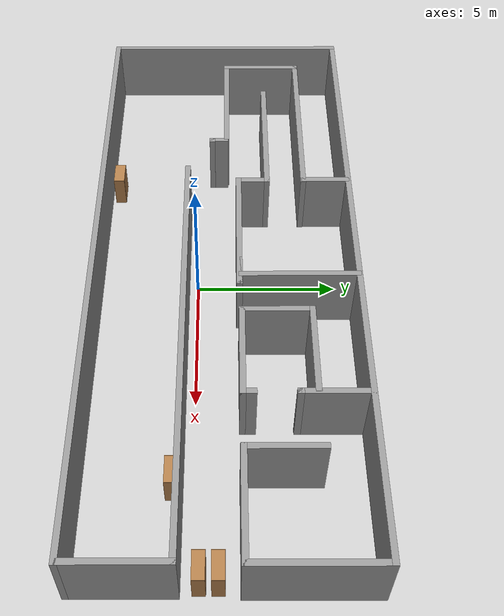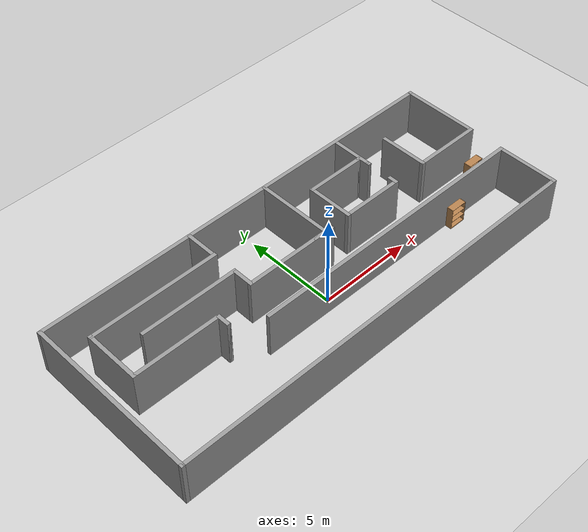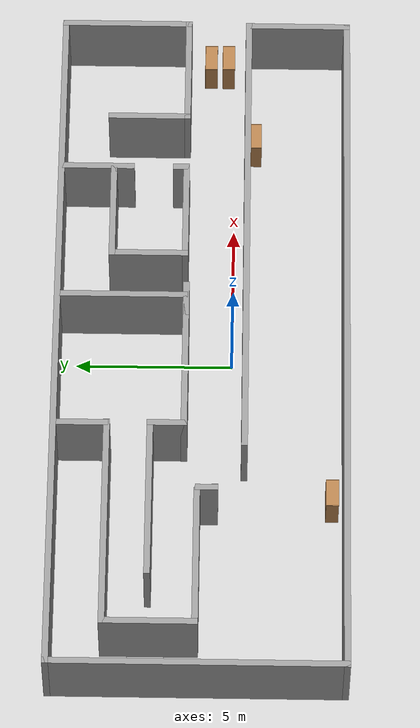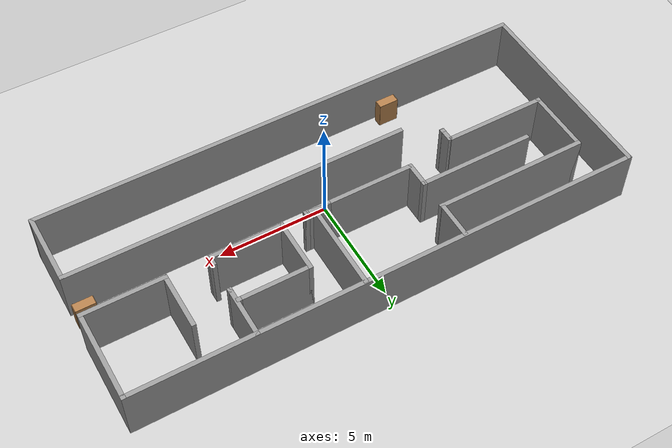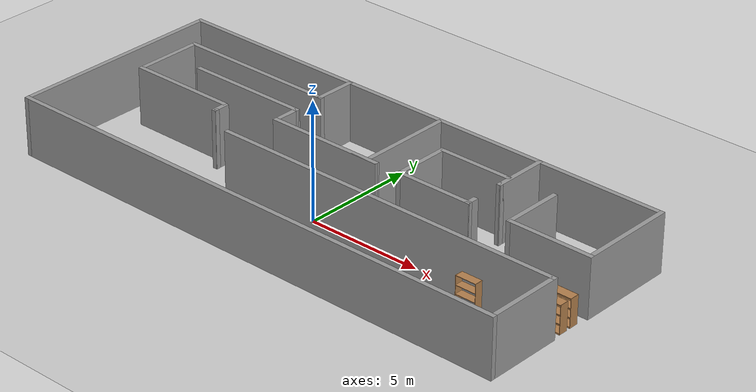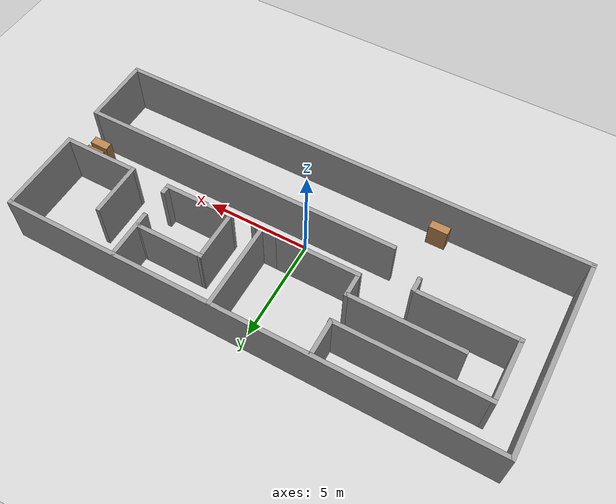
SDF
<sdf version="1.4">
 <world name="default">
  <physics type="ode">
   <gravity>0.000000 0.000000 -9.810000</gravity>
   <ode>
    <solver><type>quick</type><iters>20</iters><sor>1.000000</sor></solver>
    <constraints>
     <cfm>0.000000</cfm>
     <erp>0.200000</erp>
     <contact_max_correcting_vel>100.000000</contact_max_correcting_vel>
     <contact_surface_layer>0.000000</contact_surface_layer>
    </constraints>
   </ode>
   <real_time_update_rate>1000.000000</real_time_update_rate>
   <max_step_size>0.001000</max_step_size>
   <real_time_factor>1.000000</real_time_factor>
   <max_contacts>20</max_contacts>
  </physics>
  <light name="sun" type="directional">
   <pose>0.000000 0.000000 10.000000 0.000000 0.000000 0.000000</pose>
   <diffuse>0.800000 0.800000 0.800000 1.000000</diffuse>
   <specular>0.200000 0.200000 0.200000 1.000000</specular>
   <attenuation>
    <range>1000.000000</range>
    <constant>0.900000</constant>
    <linear>0.010000</linear>
    <quadratic>0.001000</quadratic>
   </attenuation>
   <direction>0.500000 0.100000 -0.900000</direction>
  </light>
  <model name="ground_plane">
   <static>1</static>
   <link name="link">
    <collision name="collision">
     <geometry>
      <plane><normal>0.000000 0.000000 1.000000</normal><size>100.000000 100.000000</size></plane>
     </geometry>
     <surface><friction><ode><mu>100.000000</mu><mu2>50.000000</mu2></ode></friction></surface>
    </collision>
    <visual name="visual">
     <cast_shadows>0</cast_shadows>
     <geometry>
      <plane><normal>0.000000 0.000000 1.000000</normal><size>100.000000 100.000000</size></plane>
     </geometry>
     <material>
      <script><uri>file://media/materials/scripts/gazebo.material</uri><name>Gazebo/Grey</name></script>
     </material>
    </visual>
    <velocity_decay><linear>0.000000</linear><angular>0.000000</angular></velocity_decay>
   </link>
  </model>
  <scene>
   <ambient>0.200000 0.200000 0.200000 1.000000</ambient>
   <background>0.700000 0.700000 0.700000 1.000000</background>
   <shadows>1</shadows>
  </scene>
  <model name="LaberyintWalls">
   <link name="Wall_0">
    <collision name="Wall_0_Collision">
     <geometry><box><size>15.568300 0.200000 2.500000</size></box></geometry>
     <pose>0.000000 0.000000 1.250000 0.000000 0.000000 0.000000</pose>
    </collision>
    <visual name="Wall_0_Visual">
     <pose>0.000000 0.000000 1.250000 0.000000 0.000000 0.000000</pose>
     <geometry><box><size>15.568300 0.200000 2.500000</size></box></geometry>
     <material>
      <script><uri>file://media/materials/scripts/gazebo.material</uri><name>Gazebo/Grey</name></script>
     </material>
    </visual>
    <velocity_decay><linear>0.000000</linear><angular>0.000000</angular></velocity_decay>
    <pose>3.750840 -0.417019 0.000000 0.000000 0.000000 0.000000</pose>
   </link>
   <link name="Wall_1">
    <collision name="Wall_1_Collision">
     <geometry><box><size>3.405800 0.200000 2.500000</size></box></geometry>
     <pose>0.000000 0.000000 1.250000 0.000000 0.000000 0.000000</pose>
    </collision>
    <visual name="Wall_1_Visual">
     <pose>0.000000 0.000000 1.250000 0.000000 0.000000 0.000000</pose>
     <geometry><box><size>3.405800 0.200000 2.500000</size></box></geometry>
     <material>
      <script><uri>file://media/materials/scripts/gazebo.material</uri><name>Gazebo/Grey</name></script>
     </material>
    </visual>
    <velocity_decay><linear>0.000000</linear><angular>0.000000</angular></velocity_decay>
    <pose>11.435000 -2.019920 0.000000 0.000000 0.000000 -1.570800</pose>
   </link>
   <link name="Wall_10">
    <collision name="Wall_10_Collision">
     <geometry><box><size>0.220000 0.200000 2.500000</size></box></geometry>
     <pose>0.000000 0.000000 1.250000 0.000000 0.000000 0.000000</pose>
    </collision>
    <visual name="Wall_10_Visual">
     <pose>0.000000 0.000000 1.250000 0.000000 0.000000 0.000000</pose>
     <geometry><box><size>0.220000 0.200000 2.500000</size></box></geometry>
     <material>
      <script><uri>file://media/materials/scripts/gazebo.material</uri><name>Gazebo/Grey</name></script>
     </material>
    </visual>
    <velocity_decay><linear>0.000000</linear><angular>0.000000</angular></velocity_decay>
    <pose>6.037550 3.340050 0.000000 0.000000 0.000000 1.570800</pose>
   </link>
   <link name="Wall_12">
    <collision name="Wall_12_Collision">
     <geometry><box><size>0.540000 0.200000 2.500000</size></box></geometry>
     <pose>0.000000 0.000000 1.250000 0.000000 0.000000 0.000000</pose>
    </collision>
    <visual name="Wall_12_Visual">
     <pose>0.000000 0.000000 1.250000 0.000000 0.000000 0.000000</pose>
     <geometry><box><size>0.540000 0.200000 2.500000</size></box></geometry>
     <material>
      <script><uri>file://media/materials/scripts/gazebo.material</uri><name>Gazebo/Grey</name></script>
     </material>
    </visual>
    <velocity_decay><linear>0.000000</linear><angular>0.000000</angular></velocity_decay>
    <pose>6.037550 1.720050 0.000000 0.000000 0.000000 -1.570800</pose>
   </link>
   <link name="Wall_13">
    <collision name="Wall_13_Collision">
     <geometry><box><size>3.400000 0.200000 2.500000</size></box></geometry>
     <pose>0.000000 0.000000 1.250000 0.000000 0.000000 0.000000</pose>
    </collision>
    <visual name="Wall_13_Visual">
     <pose>0.000000 0.000000 1.250000 0.000000 0.000000 0.000000</pose>
     <geometry><box><size>3.400000 0.200000 2.500000</size></box></geometry>
     <material>
      <script><uri>file://media/materials/scripts/gazebo.material</uri><name>Gazebo/Grey</name></script>
     </material>
    </visual>
    <velocity_decay><linear>0.000000</linear><angular>0.000000</angular></velocity_decay>
    <pose>4.437550 1.550050 0.000000 0.000000 0.000000 3.141590</pose>
   </link>
   <link name="Wall_14">
    <collision name="Wall_14_Collision">
     <geometry><box><size>2.540000 0.200000 2.500000</size></box></geometry>
     <pose>0.000000 0.000000 1.250000 0.000000 0.000000 0.000000</pose>
    </collision>
    <visual name="Wall_14_Visual">
     <pose>0.000000 0.000000 1.250000 0.000000 0.000000 0.000000</pose>
     <geometry><box><size>2.540000 0.200000 2.500000</size></box></geometry>
     <material>
      <script><uri>file://media/materials/scripts/gazebo.material</uri><name>Gazebo/Grey</name></script>
     </material>
    </visual>
    <velocity_decay><linear>0.000000</linear><angular>0.000000</angular></velocity_decay>
    <pose>2.837550 2.720050 0.000000 0.000000 0.000000 1.570800</pose>
   </link>
   <link name="Wall_15">
    <collision name="Wall_15_Collision">
     <geometry><box><size>3.300000 0.200000 2.500000</size></box></geometry>
     <pose>0.000000 0.000000 1.250000 0.000000 0.000000 0.000000</pose>
    </collision>
    <visual name="Wall_15_Visual">
     <pose>0.000000 0.000000 1.250000 0.000000 0.000000 0.000000</pose>
     <geometry><box><size>3.300000 0.200000 2.500000</size></box></geometry>
     <material>
      <script><uri>file://media/materials/scripts/gazebo.material</uri><name>Gazebo/Grey</name></script>
     </material>
    </visual>
    <velocity_decay><linear>0.000000</linear><angular>0.000000</angular></velocity_decay>
    <pose>4.387550 3.890050 0.000000 0.000000 0.000000 0.000000</pose>
   </link>
   <link name="Wall_16">
    <collision name="Wall_16_Collision">
     <geometry><box><size>0.220000 0.200000 2.500000</size></box></geometry>
     <pose>0.000000 0.000000 1.250000 0.000000 0.000000 0.000000</pose>
    </collision>
    <visual name="Wall_16_Visual">
     <pose>0.000000 0.000000 1.250000 0.000000 0.000000 0.000000</pose>
     <geometry><box><size>0.220000 0.200000 2.500000</size></box></geometry>
     <material>
      <script><uri>file://media/materials/scripts/gazebo.material</uri><name>Gazebo/Grey</name></script>
     </material>
    </visual>
    <velocity_decay><linear>0.000000</linear><angular>0.000000</angular></velocity_decay>
    <pose>5.947550 3.890050 0.000000 0.000000 0.000000 0.000000</pose>
   </link>
   <link name="Wall_18">
    <collision name="Wall_18_Collision">
     <geometry><box><size>4.200000 0.200000 2.500000</size></box></geometry>
     <pose>0.000000 0.000000 1.250000 0.000000 0.000000 0.000000</pose>
    </collision>
    <visual name="Wall_18_Visual">
     <pose>0.000000 0.000000 1.250000 0.000000 0.000000 0.000000</pose>
     <geometry><box><size>4.200000 0.200000 2.500000</size></box></geometry>
     <material>
      <script><uri>file://media/materials/scripts/gazebo.material</uri><name>Gazebo/Grey</name></script>
     </material>
    </visual>
    <velocity_decay><linear>0.000000</linear><angular>0.000000</angular></velocity_decay>
    <pose>1.317550 3.550050 0.000000 0.000000 0.000000 -1.570800</pose>
   </link>
   <link name="Wall_2">
    <collision name="Wall_2_Collision">
     <geometry><box><size>23.080000 0.200000 2.500000</size></box></geometry>
     <pose>0.000000 0.000000 1.250000 0.000000 0.000000 0.000000</pose>
    </collision>
    <visual name="Wall_2_Visual">
     <pose>0.000000 0.000000 1.250000 0.000000 0.000000 0.000000</pose>
     <geometry><box><size>23.080000 0.200000 2.500000</size></box></geometry>
     <material>
      <script><uri>file://media/materials/scripts/gazebo.material</uri><name>Gazebo/Grey</name></script>
     </material>
    </visual>
    <velocity_decay><linear>0.000000</linear><angular>0.000000</angular></velocity_decay>
    <pose>-0.005001 -3.622820 0.000000 0.000000 0.000000 3.141590</pose>
   </link>
   <link name="Wall_20">
    <collision name="Wall_20_Collision">
     <geometry><box><size>1.200000 0.200000 2.500000</size></box></geometry>
     <pose>0.000000 0.000000 1.250000 0.000000 0.000000 0.000000</pose>
    </collision>
    <visual name="Wall_20_Visual">
     <pose>0.000000 0.000000 1.250000 0.000000 0.000000 0.000000</pose>
     <geometry><box><size>1.200000 0.200000 2.500000</size></box></geometry>
     <material>
      <script><uri>file://media/materials/scripts/gazebo.material</uri><name>Gazebo/Grey</name></script>
     </material>
    </visual>
    <velocity_decay><linear>0.000000</linear><angular>0.000000</angular></velocity_decay>
    <pose>1.177550 1.490050 0.000000 0.000000 0.000000 0.000000</pose>
   </link>
   <link name="Wall_21">
    <collision name="Wall_21_Collision">
     <geometry><box><size>0.210000 0.200000 2.500000</size></box></geometry>
     <pose>0.000000 0.000000 1.250000 0.000000 0.000000 0.000000</pose>
    </collision>
    <visual name="Wall_21_Visual">
     <pose>0.000000 0.000000 1.250000 0.000000 0.000000 0.000000</pose>
     <geometry><box><size>0.210000 0.200000 2.500000</size></box></geometry>
     <material>
      <script><uri>file://media/materials/scripts/gazebo.material</uri><name>Gazebo/Grey</name></script>
     </material>
    </visual>
    <velocity_decay><linear>0.000000</linear><angular>0.000000</angular></velocity_decay>
    <pose>1.682550 1.490050 0.000000 0.000000 0.000000 0.000000</pose>
   </link>
   <link name="Wall_22">
    <collision name="Wall_22_Collision">
     <geometry><box><size>5.150000 0.200000 2.500000</size></box></geometry>
     <pose>0.000000 0.000000 1.250000 0.000000 0.000000 0.000000</pose>
    </collision>
    <visual name="Wall_22_Visual">
     <pose>0.000000 0.000000 1.250000 0.000000 0.000000 0.000000</pose>
     <geometry><box><size>5.150000 0.200000 2.500000</size></box></geometry>
     <material>
      <script><uri>file://media/materials/scripts/gazebo.material</uri><name>Gazebo/Grey</name></script>
     </material>
    </visual>
    <velocity_decay><linear>0.000000</linear><angular>0.000000</angular></velocity_decay>
    <pose>-0.787451 1.490050 0.000000 0.000000 0.000000 3.141590</pose>
   </link>
   <link name="Wall_23">
    <collision name="Wall_23_Collision">
     <geometry><box><size>1.260000 0.200000 2.500000</size></box></geometry>
     <pose>0.000000 0.000000 1.250000 0.000000 0.000000 0.000000</pose>
    </collision>
    <visual name="Wall_23_Visual">
     <pose>0.000000 0.000000 1.250000 0.000000 0.000000 0.000000</pose>
     <geometry><box><size>1.260000 0.200000 2.500000</size></box></geometry>
     <material>
      <script><uri>file://media/materials/scripts/gazebo.material</uri><name>Gazebo/Grey</name></script>
     </material>
    </visual>
    <velocity_decay><linear>0.000000</linear><angular>0.000000</angular></velocity_decay>
    <pose>-3.262450 2.020060 0.000000 0.000000 0.000000 1.570800</pose>
   </link>
   <link name="Wall_25">
    <collision name="Wall_25_Collision">
     <geometry><box><size>1.780000 0.200000 2.500000</size></box></geometry>
     <pose>0.000000 0.000000 1.250000 0.000000 0.000000 0.000000</pose>
    </collision>
    <visual name="Wall_25_Visual">
     <pose>0.000000 0.000000 1.250000 0.000000 0.000000 0.000000</pose>
     <geometry><box><size>1.780000 0.200000 2.500000</size></box></geometry>
     <material>
      <script><uri>file://media/materials/scripts/gazebo.material</uri><name>Gazebo/Grey</name></script>
     </material>
    </visual>
    <velocity_decay><linear>0.000000</linear><angular>0.000000</angular></velocity_decay>
    <pose>-3.282450 4.740050 0.000000 0.000000 0.000000 1.570800</pose>
   </link>
   <link name="Wall_3">
    <collision name="Wall_3_Collision">
     <geometry><box><size>9.412870 0.200000 2.500000</size></box></geometry>
     <pose>0.000000 0.000000 1.250000 0.000000 0.000000 0.000000</pose>
    </collision>
    <visual name="Wall_3_Visual">
     <pose>0.000000 0.000000 1.250000 0.000000 0.000000 0.000000</pose>
     <geometry><box><size>9.412870 0.200000 2.500000</size></box></geometry>
     <material>
      <script><uri>file://media/materials/scripts/gazebo.material</uri><name>Gazebo/Grey</name></script>
     </material>
    </visual>
    <velocity_decay><linear>0.000000</linear><angular>0.000000</angular></velocity_decay>
    <pose>-11.445000 0.983617 0.000000 0.000000 0.000000 1.570800</pose>
   </link>
   <link name="Wall_30">
    <collision name="Wall_30_Collision">
     <geometry><box><size>5.320000 0.200000 2.500000</size></box></geometry>
     <pose>0.000000 0.000000 1.250000 0.000000 0.000000 0.000000</pose>
    </collision>
    <visual name="Wall_30_Visual">
     <pose>0.000000 0.000000 1.250000 0.000000 0.000000 0.000000</pose>
     <geometry><box><size>5.320000 0.200000 2.500000</size></box></geometry>
     <material>
      <script><uri>file://media/materials/scripts/gazebo.material</uri><name>Gazebo/Grey</name></script>
     </material>
    </visual>
    <velocity_decay><linear>0.000000</linear><angular>0.000000</angular></velocity_decay>
    <pose>-5.822450 2.550050 0.000000 0.000000 0.000000 3.141590</pose>
   </link>
   <link name="Wall_35">
    <collision name="Wall_35_Collision">
     <geometry><box><size>7.020000 0.200000 2.500000</size></box></geometry>
     <pose>0.000000 0.000000 1.250000 0.000000 0.000000 0.000000</pose>
    </collision>
    <visual name="Wall_35_Visual">
     <pose>0.000000 0.000000 1.250000 0.000000 0.000000 0.000000</pose>
     <geometry><box><size>7.020000 0.200000 2.500000</size></box></geometry>
     <material>
      <script><uri>file://media/materials/scripts/gazebo.material</uri><name>Gazebo/Grey</name></script>
     </material>
    </visual>
    <velocity_decay><linear>0.000000</linear><angular>0.000000</angular></velocity_decay>
    <pose>-6.672450 3.910050 0.000000 0.000000 0.000000 3.141590</pose>
   </link>
   <link name="Wall_36">
    <collision name="Wall_36_Collision">
     <geometry><box><size>3.060000 0.200000 2.500000</size></box></geometry>
     <pose>0.000000 0.000000 1.250000 0.000000 0.000000 0.000000</pose>
    </collision>
    <visual name="Wall_36_Visual">
     <pose>0.000000 0.000000 1.250000 0.000000 0.000000 0.000000</pose>
     <geometry><box><size>3.060000 0.200000 2.500000</size></box></geometry>
     <material>
      <script><uri>file://media/materials/scripts/gazebo.material</uri><name>Gazebo/Grey</name></script>
     </material>
    </visual>
    <velocity_decay><linear>0.000000</linear><angular>0.000000</angular></velocity_decay>
    <pose>-10.082500 2.480060 0.000000 0.000000 0.000000 -1.570800</pose>
   </link>
   <link name="Wall_37">
    <collision name="Wall_37_Collision">
     <geometry><box><size>4.661610 0.200000 2.500000</size></box></geometry>
     <pose>0.000000 0.000000 1.250000 0.000000 0.000000 0.000000</pose>
    </collision>
    <visual name="Wall_37_Visual">
     <pose>0.000000 0.000000 1.250000 0.000000 0.000000 0.000000</pose>
     <geometry><box><size>4.661610 0.200000 2.500000</size></box></geometry>
     <material>
      <script><uri>file://media/materials/scripts/gazebo.material</uri><name>Gazebo/Grey</name></script>
     </material>
    </visual>
    <velocity_decay><linear>0.000000</linear><angular>0.000000</angular></velocity_decay>
    <pose>-7.851640 1.050050 0.000000 0.000000 0.000000 0.000000</pose>
   </link>
   <link name="Wall_39">
    <collision name="Wall_39_Collision">
     <geometry><box><size>0.720000 0.200000 2.500000</size></box></geometry>
     <pose>0.000000 0.000000 1.250000 0.000000 0.000000 0.000000</pose>
    </collision>
    <visual name="Wall_39_Visual">
     <pose>0.000000 0.000000 1.250000 0.000000 0.000000 0.000000</pose>
     <geometry><box><size>0.720000 0.200000 2.500000</size></box></geometry>
     <material>
      <script><uri>file://media/materials/scripts/gazebo.material</uri><name>Gazebo/Grey</name></script>
     </material>
    </visual>
    <velocity_decay><linear>0.000000</linear><angular>0.000000</angular></velocity_decay>
    <pose>-5.502450 0.750055 0.000000 0.000000 0.000000 -1.570800</pose>
   </link>
   <link name="Wall_4">
    <collision name="Wall_4_Collision">
     <geometry><box><size>23.122600 0.200000 2.500000</size></box></geometry>
     <pose>0.000000 0.000000 1.250000 0.000000 0.000000 0.000000</pose>
    </collision>
    <visual name="Wall_4_Visual">
     <pose>0.000000 0.000000 1.250000 0.000000 0.000000 0.000000</pose>
     <geometry><box><size>23.122600 0.200000 2.500000</size></box></geometry>
     <material>
      <script><uri>file://media/materials/scripts/gazebo.material</uri><name>Gazebo/Grey</name></script>
     </material>
    </visual>
    <velocity_decay><linear>0.000000</linear><angular>0.000000</angular></velocity_decay>
    <pose>0.016274 5.590060 0.000000 0.000000 0.000000 0.000000</pose>
   </link>
   <link name="Wall_40">
    <collision name="Wall_40_Collision">
     <geometry><box><size>0.210000 0.200000 2.500000</size></box></geometry>
     <pose>0.000000 0.000000 1.250000 0.000000 0.000000 0.000000</pose>
    </collision>
    <visual name="Wall_40_Visual">
     <pose>0.000000 0.000000 1.250000 0.000000 0.000000 0.000000</pose>
     <geometry><box><size>0.210000 0.200000 2.500000</size></box></geometry>
     <material>
      <script><uri>file://media/materials/scripts/gazebo.material</uri><name>Gazebo/Grey</name></script>
     </material>
    </visual>
    <velocity_decay><linear>0.000000</linear><angular>0.000000</angular></velocity_decay>
    <pose>-5.497450 0.490055 0.000000 0.000000 0.000000 0.000000</pose>
   </link>
   <link name="Wall_5">
    <collision name="Wall_5_Collision">
     <geometry><box><size>4.240000 0.200000 2.500000</size></box></geometry>
     <pose>0.000000 0.000000 1.250000 0.000000 0.000000 0.000000</pose>
    </collision>
    <visual name="Wall_5_Visual">
     <pose>0.000000 0.000000 1.250000 0.000000 0.000000 0.000000</pose>
     <geometry><box><size>4.240000 0.200000 2.500000</size></box></geometry>
     <material>
      <script><uri>file://media/materials/scripts/gazebo.material</uri><name>Gazebo/Grey</name></script>
     </material>
    </visual>
    <velocity_decay><linear>0.000000</linear><angular>0.000000</angular></velocity_decay>
    <pose>11.477600 3.570050 0.000000 0.000000 0.000000 -1.570800</pose>
   </link>
   <link name="Wall_6">
    <collision name="Wall_6_Collision">
     <geometry><box><size>3.740000 0.200000 2.500000</size></box></geometry>
     <pose>0.000000 0.000000 1.250000 0.000000 0.000000 0.000000</pose>
    </collision>
    <visual name="Wall_6_Visual">
     <pose>0.000000 0.000000 1.250000 0.000000 0.000000 0.000000</pose>
     <geometry><box><size>3.740000 0.200000 2.500000</size></box></geometry>
     <material>
      <script><uri>file://media/materials/scripts/gazebo.material</uri><name>Gazebo/Grey</name></script>
     </material>
    </visual>
    <velocity_decay><linear>0.000000</linear><angular>0.000000</angular></velocity_decay>
    <pose>9.707550 1.550050 0.000000 0.000000 0.000000 3.141590</pose>
   </link>
   <link name="Wall_7">
    <collision name="Wall_7_Collision">
     <geometry><box><size>2.660000 0.200000 2.500000</size></box></geometry>
     <pose>0.000000 0.000000 1.250000 0.000000 0.000000 0.000000</pose>
    </collision>
    <visual name="Wall_7_Visual">
     <pose>0.000000 0.000000 1.250000 0.000000 0.000000 0.000000</pose>
     <geometry><box><size>2.660000 0.200000 2.500000</size></box></geometry>
     <material>
      <script><uri>file://media/materials/scripts/gazebo.material</uri><name>Gazebo/Grey</name></script>
     </material>
    </visual>
    <velocity_decay><linear>0.000000</linear><angular>0.000000</angular></velocity_decay>
    <pose>7.937550 2.780050 0.000000 0.000000 0.000000 1.570800</pose>
   </link>
   <link name="Wall_9">
    <collision name="Wall_9_Collision">
     <geometry><box><size>2.440000 0.200000 2.500000</size></box></geometry>
     <pose>0.000000 0.000000 1.250000 0.000000 0.000000 0.000000</pose>
    </collision>
    <visual name="Wall_9_Visual">
     <pose>0.000000 0.000000 1.250000 0.000000 0.000000 0.000000</pose>
     <geometry><box><size>2.440000 0.200000 2.500000</size></box></geometry>
     <material>
      <script><uri>file://media/materials/scripts/gazebo.material</uri><name>Gazebo/Grey</name></script>
     </material>
    </visual>
    <velocity_decay><linear>0.000000</linear><angular>0.000000</angular></velocity_decay>
    <pose>6.037550 4.450050 0.000000 0.000000 0.000000 -1.570800</pose>
   </link>
   <static>1</static>
  </model>
  <model name="bookshelf">
   <static>1</static>
   <link name="link">
    <inertial><mass>1.000000</mass></inertial>
    <collision name="back">
     <pose>0.000000 0.005000 0.600000 0.000000 0.000000 0.000000</pose>
     <geometry><box><size>0.900000 0.010000 1.200000</size></box></geometry>
    </collision>
    <visual name="visual1">
     <pose>0.000000 0.005000 0.600000 0.000000 0.000000 0.000000</pose>
     <geometry><box><size>0.900000 0.010000 1.200000</size></box></geometry>
     <material>
      <script><uri>file://media/materials/scripts/gazebo.material</uri><name>Gazebo/Wood</name></script>
     </material>
    </visual>
    <collision name="left_side">
     <pose>0.450000 -0.195000 0.600000 0.000000 0.000000 0.000000</pose>
     <geometry><box><size>0.020000 0.400000 1.200000</size></box></geometry>
    </collision>
    <visual name="visual2">
     <pose>0.450000 -0.195000 0.600000 0.000000 0.000000 0.000000</pose>
     <geometry><box><size>0.020000 0.400000 1.200000</size></box></geometry>
     <material>
      <script><uri>file://media/materials/scripts/gazebo.material</uri><name>Gazebo/Wood</name></script>
     </material>
    </visual>
    <collision name="right_side">
     <pose>-0.450000 -0.195000 0.600000 0.000000 0.000000 0.000000</pose>
     <geometry><box><size>0.020000 0.400000 1.200000</size></box></geometry>
    </collision>
    <visual name="visual3">
     <pose>-0.450000 -0.195000 0.600000 0.000000 0.000000 0.000000</pose>
     <geometry><box><size>0.020000 0.400000 1.200000</size></box></geometry>
     <material>
      <script><uri>file://media/materials/scripts/gazebo.material</uri><name>Gazebo/Wood</name></script>
     </material>
    </visual>
    <collision name="bottom">
     <pose>0.000000 -0.195000 0.030000 0.000000 0.000000 0.000000</pose>
     <geometry><box><size>0.880000 0.400000 0.060000</size></box></geometry>
    </collision>
    <visual name="visual4">
     <pose>0.000000 -0.195000 0.030000 0.000000 0.000000 0.000000</pose>
     <geometry><box><size>0.880000 0.400000 0.060000</size></box></geometry>
     <material>
      <script><uri>file://media/materials/scripts/gazebo.material</uri><name>Gazebo/Wood</name></script>
     </material>
    </visual>
    <collision name="top">
     <pose>0.000000 -0.195000 1.190000 0.000000 0.000000 0.000000</pose>
     <geometry><box><size>0.880000 0.400000 0.020000</size></box></geometry>
    </collision>
    <visual name="visual5">
     <pose>0.000000 -0.195000 1.190000 0.000000 0.000000 0.000000</pose>
     <geometry><box><size>0.880000 0.400000 0.020000</size></box></geometry>
     <material>
      <script><uri>file://media/materials/scripts/gazebo.material</uri><name>Gazebo/Wood</name></script>
     </material>
    </visual>
    <collision name="low_shelf">
     <pose>0.000000 -0.195000 0.430000 0.000000 0.000000 0.000000</pose>
     <geometry><box><size>0.880000 0.400000 0.020000</size></box></geometry>
    </collision>
    <visual name="visual6">
     <pose>0.000000 -0.195000 0.430000 0.000000 0.000000 0.000000</pose>
     <geometry><box><size>0.880000 0.400000 0.020000</size></box></geometry>
     <material>
      <script><uri>file://media/materials/scripts/gazebo.material</uri><name>Gazebo/Wood</name></script>
     </material>
    </visual>
    <collision name="high_shelf">
     <pose>0.000000 -0.195000 0.800000 0.000000 0.000000 0.000000</pose>
     <geometry><box><size>0.880000 0.400000 0.020000</size></box></geometry>
    </collision>
    <visual name="visual7">
     <pose>0.000000 -0.195000 0.800000 0.000000 0.000000 0.000000</pose>
     <geometry><box><size>0.880000 0.400000 0.020000</size></box></geometry>
     <material>
      <script><uri>file://media/materials/scripts/gazebo.material</uri><name>Gazebo/Wood</name></script>
     </material>
    </visual>
    <velocity_decay><linear>0.000000</linear><angular>0.000000</angular></velocity_decay>
   </link>
   <pose>11.000000 0.428315 0.000000 0.000000 0.000000 0.000000</pose>
  </model>
  <model name="bookshelf_0">
   <static>1</static>
   <link name="link">
    <inertial><mass>1.000000</mass></inertial>
    <collision name="back">
     <pose>0.000000 0.005000 0.600000 0.000000 0.000000 0.000000</pose>
     <geometry><box><size>0.900000 0.010000 1.200000</size></box></geometry>
    </collision>
    <visual name="visual1">
     <pose>0.000000 0.005000 0.600000 0.000000 0.000000 0.000000</pose>
     <geometry><box><size>0.900000 0.010000 1.200000</size></box></geometry>
     <material>
      <script><uri>file://media/materials/scripts/gazebo.material</uri><name>Gazebo/Wood</name></script>
     </material>
    </visual>
    <collision name="left_side">
     <pose>0.450000 -0.195000 0.600000 0.000000 0.000000 0.000000</pose>
     <geometry><box><size>0.020000 0.400000 1.200000</size></box></geometry>
    </collision>
    <visual name="visual2">
     <pose>0.450000 -0.195000 0.600000 0.000000 0.000000 0.000000</pose>
     <geometry><box><size>0.020000 0.400000 1.200000</size></box></geometry>
     <material>
      <script><uri>file://media/materials/scripts/gazebo.material</uri><name>Gazebo/Wood</name></script>
     </material>
    </visual>
    <collision name="right_side">
     <pose>-0.450000 -0.195000 0.600000 0.000000 0.000000 0.000000</pose>
     <geometry><box><size>0.020000 0.400000 1.200000</size></box></geometry>
    </collision>
    <visual name="visual3">
     <pose>-0.450000 -0.195000 0.600000 0.000000 0.000000 0.000000</pose>
     <geometry><box><size>0.020000 0.400000 1.200000</size></box></geometry>
     <material>
      <script><uri>file://media/materials/scripts/gazebo.material</uri><name>Gazebo/Wood</name></script>
     </material>
    </visual>
    <collision name="bottom">
     <pose>0.000000 -0.195000 0.030000 0.000000 0.000000 0.000000</pose>
     <geometry><box><size>0.880000 0.400000 0.060000</size></box></geometry>
    </collision>
    <visual name="visual4">
     <pose>0.000000 -0.195000 0.030000 0.000000 0.000000 0.000000</pose>
     <geometry><box><size>0.880000 0.400000 0.060000</size></box></geometry>
     <material>
      <script><uri>file://media/materials/scripts/gazebo.material</uri><name>Gazebo/Wood</name></script>
     </material>
    </visual>
    <collision name="top">
     <pose>0.000000 -0.195000 1.190000 0.000000 0.000000 0.000000</pose>
     <geometry><box><size>0.880000 0.400000 0.020000</size></box></geometry>
    </collision>
    <visual name="visual5">
     <pose>0.000000 -0.195000 1.190000 0.000000 0.000000 0.000000</pose>
     <geometry><box><size>0.880000 0.400000 0.020000</size></box></geometry>
     <material>
      <script><uri>file://media/materials/scripts/gazebo.material</uri><name>Gazebo/Wood</name></script>
     </material>
    </visual>
    <collision name="low_shelf">
     <pose>0.000000 -0.195000 0.430000 0.000000 0.000000 0.000000</pose>
     <geometry><box><size>0.880000 0.400000 0.020000</size></box></geometry>
    </collision>
    <visual name="visual6">
     <pose>0.000000 -0.195000 0.430000 0.000000 0.000000 0.000000</pose>
     <geometry><box><size>0.880000 0.400000 0.020000</size></box></geometry>
     <material>
      <script><uri>file://media/materials/scripts/gazebo.material</uri><name>Gazebo/Wood</name></script>
     </material>
    </visual>
    <collision name="high_shelf">
     <pose>0.000000 -0.195000 0.800000 0.000000 0.000000 0.000000</pose>
     <geometry><box><size>0.880000 0.400000 0.020000</size></box></geometry>
    </collision>
    <visual name="visual7">
     <pose>0.000000 -0.195000 0.800000 0.000000 0.000000 0.000000</pose>
     <geometry><box><size>0.880000 0.400000 0.020000</size></box></geometry>
     <material>
      <script><uri>file://media/materials/scripts/gazebo.material</uri><name>Gazebo/Wood</name></script>
     </material>
    </visual>
    <velocity_decay><linear>0.000000</linear><angular>0.000000</angular></velocity_decay>
   </link>
   <pose>11.000000 1.000000 0.000000 0.000000 0.000000 0.000000</pose>
  </model>
  <model name="bookshelf_1">
   <static>1</static>
   <link name="link">
    <inertial><mass>1.000000</mass></inertial>
    <collision name="back">
     <pose>0.000000 0.005000 0.600000 0.000000 0.000000 0.000000</pose>
     <geometry><box><size>0.900000 0.010000 1.200000</size></box></geometry>
    </collision>
    <visual name="visual1">
     <pose>0.000000 0.005000 0.600000 0.000000 0.000000 0.000000</pose>
     <geometry><box><size>0.900000 0.010000 1.200000</size></box></geometry>
     <material>
      <script><uri>file://media/materials/scripts/gazebo.material</uri><name>Gazebo/Wood</name></script>
     </material>
    </visual>
    <collision name="left_side">
     <pose>0.450000 -0.195000 0.600000 0.000000 0.000000 0.000000</pose>
     <geometry><box><size>0.020000 0.400000 1.200000</size></box></geometry>
    </collision>
    <visual name="visual2">
     <pose>0.450000 -0.195000 0.600000 0.000000 0.000000 0.000000</pose>
     <geometry><box><size>0.020000 0.400000 1.200000</size></box></geometry>
     <material>
      <script><uri>file://media/materials/scripts/gazebo.material</uri><name>Gazebo/Wood</name></script>
     </material>
    </visual>
    <collision name="right_side">
     <pose>-0.450000 -0.195000 0.600000 0.000000 0.000000 0.000000</pose>
     <geometry><box><size>0.020000 0.400000 1.200000</size></box></geometry>
    </collision>
    <visual name="visual3">
     <pose>-0.450000 -0.195000 0.600000 0.000000 0.000000 0.000000</pose>
     <geometry><box><size>0.020000 0.400000 1.200000</size></box></geometry>
     <material>
      <script><uri>file://media/materials/scripts/gazebo.material</uri><name>Gazebo/Wood</name></script>
     </material>
    </visual>
    <collision name="bottom">
     <pose>0.000000 -0.195000 0.030000 0.000000 0.000000 0.000000</pose>
     <geometry><box><size>0.880000 0.400000 0.060000</size></box></geometry>
    </collision>
    <visual name="visual4">
     <pose>0.000000 -0.195000 0.030000 0.000000 0.000000 0.000000</pose>
     <geometry><box><size>0.880000 0.400000 0.060000</size></box></geometry>
     <material>
      <script><uri>file://media/materials/scripts/gazebo.material</uri><name>Gazebo/Wood</name></script>
     </material>
    </visual>
    <collision name="top">
     <pose>0.000000 -0.195000 1.190000 0.000000 0.000000 0.000000</pose>
     <geometry><box><size>0.880000 0.400000 0.020000</size></box></geometry>
    </collision>
    <visual name="visual5">
     <pose>0.000000 -0.195000 1.190000 0.000000 0.000000 0.000000</pose>
     <geometry><box><size>0.880000 0.400000 0.020000</size></box></geometry>
     <material>
      <script><uri>file://media/materials/scripts/gazebo.material</uri><name>Gazebo/Wood</name></script>
     </material>
    </visual>
    <collision name="low_shelf">
     <pose>0.000000 -0.195000 0.430000 0.000000 0.000000 0.000000</pose>
     <geometry><box><size>0.880000 0.400000 0.020000</size></box></geometry>
    </collision>
    <visual name="visual6">
     <pose>0.000000 -0.195000 0.430000 0.000000 0.000000 0.000000</pose>
     <geometry><box><size>0.880000 0.400000 0.020000</size></box></geometry>
     <material>
      <script><uri>file://media/materials/scripts/gazebo.material</uri><name>Gazebo/Wood</name></script>
     </material>
    </visual>
    <collision name="high_shelf">
     <pose>0.000000 -0.195000 0.800000 0.000000 0.000000 0.000000</pose>
     <geometry><box><size>0.880000 0.400000 0.020000</size></box></geometry>
    </collision>
    <visual name="visual7">
     <pose>0.000000 -0.195000 0.800000 0.000000 0.000000 0.000000</pose>
     <geometry><box><size>0.880000 0.400000 0.020000</size></box></geometry>
     <material>
      <script><uri>file://media/materials/scripts/gazebo.material</uri><name>Gazebo/Wood</name></script>
     </material>
    </visual>
    <velocity_decay><linear>0.000000</linear><angular>0.000000</angular></velocity_decay>
   </link>
   <pose>8.000000 -0.477792 0.000000 0.000000 0.000000 0.000000</pose>
  </model>
  <model name="bookshelf_2">
   <static>1</static>
   <link name="link">
    <inertial><mass>1.000000</mass></inertial>
    <collision name="back">
     <pose>0.000000 0.005000 0.600000 0.000000 0.000000 0.000000</pose>
     <geometry><box><size>0.900000 0.010000 1.200000</size></box></geometry>
    </collision>
    <visual name="visual1">
     <pose>0.000000 0.005000 0.600000 0.000000 0.000000 0.000000</pose>
     <geometry><box><size>0.900000 0.010000 1.200000</size></box></geometry>
     <material>
      <script><uri>file://media/materials/scripts/gazebo.material</uri><name>Gazebo/Wood</name></script>
     </material>
    </visual>
    <collision name="left_side">
     <pose>0.450000 -0.195000 0.600000 0.000000 0.000000 0.000000</pose>
     <geometry><box><size>0.020000 0.400000 1.200000</size></box></geometry>
    </collision>
    <visual name="visual2">
     <pose>0.450000 -0.195000 0.600000 0.000000 0.000000 0.000000</pose>
     <geometry><box><size>0.020000 0.400000 1.200000</size></box></geometry>
     <material>
      <script><uri>file://media/materials/scripts/gazebo.material</uri><name>Gazebo/Wood</name></script>
     </material>
    </visual>
    <collision name="right_side">
     <pose>-0.450000 -0.195000 0.600000 0.000000 0.000000 0.000000</pose>
     <geometry><box><size>0.020000 0.400000 1.200000</size></box></geometry>
    </collision>
    <visual name="visual3">
     <pose>-0.450000 -0.195000 0.600000 0.000000 0.000000 0.000000</pose>
     <geometry><box><size>0.020000 0.400000 1.200000</size></box></geometry>
     <material>
      <script><uri>file://media/materials/scripts/gazebo.material</uri><name>Gazebo/Wood</name></script>
     </material>
    </visual>
    <collision name="bottom">
     <pose>0.000000 -0.195000 0.030000 0.000000 0.000000 0.000000</pose>
     <geometry><box><size>0.880000 0.400000 0.060000</size></box></geometry>
    </collision>
    <visual name="visual4">
     <pose>0.000000 -0.195000 0.030000 0.000000 0.000000 0.000000</pose>
     <geometry><box><size>0.880000 0.400000 0.060000</size></box></geometry>
     <material>
      <script><uri>file://media/materials/scripts/gazebo.material</uri><name>Gazebo/Wood</name></script>
     </material>
    </visual>
    <collision name="top">
     <pose>0.000000 -0.195000 1.190000 0.000000 0.000000 0.000000</pose>
     <geometry><box><size>0.880000 0.400000 0.020000</size></box></geometry>
    </collision>
    <visual name="visual5">
     <pose>0.000000 -0.195000 1.190000 0.000000 0.000000 0.000000</pose>
     <geometry><box><size>0.880000 0.400000 0.020000</size></box></geometry>
     <material>
      <script><uri>file://media/materials/scripts/gazebo.material</uri><name>Gazebo/Wood</name></script>
     </material>
    </visual>
    <collision name="low_shelf">
     <pose>0.000000 -0.195000 0.430000 0.000000 0.000000 0.000000</pose>
     <geometry><box><size>0.880000 0.400000 0.020000</size></box></geometry>
    </collision>
    <visual name="visual6">
     <pose>0.000000 -0.195000 0.430000 0.000000 0.000000 0.000000</pose>
     <geometry><box><size>0.880000 0.400000 0.020000</size></box></geometry>
     <material>
      <script><uri>file://media/materials/scripts/gazebo.material</uri><name>Gazebo/Wood</name></script>
     </material>
    </visual>
    <collision name="high_shelf">
     <pose>0.000000 -0.195000 0.800000 0.000000 0.000000 0.000000</pose>
     <geometry><box><size>0.880000 0.400000 0.020000</size></box></geometry>
    </collision>
    <visual name="visual7">
     <pose>0.000000 -0.195000 0.800000 0.000000 0.000000 0.000000</pose>
     <geometry><box><size>0.880000 0.400000 0.020000</size></box></geometry>
     <material>
      <script><uri>file://media/materials/scripts/gazebo.material</uri><name>Gazebo/Wood</name></script>
     </material>
    </visual>
    <velocity_decay><linear>0.000000</linear><angular>0.000000</angular></velocity_decay>
   </link>
   <pose>-5.000000 -3.000000 0.000000 0.000000 0.000000 0.000000</pose>
  </model>
 </world>
</sdf>
